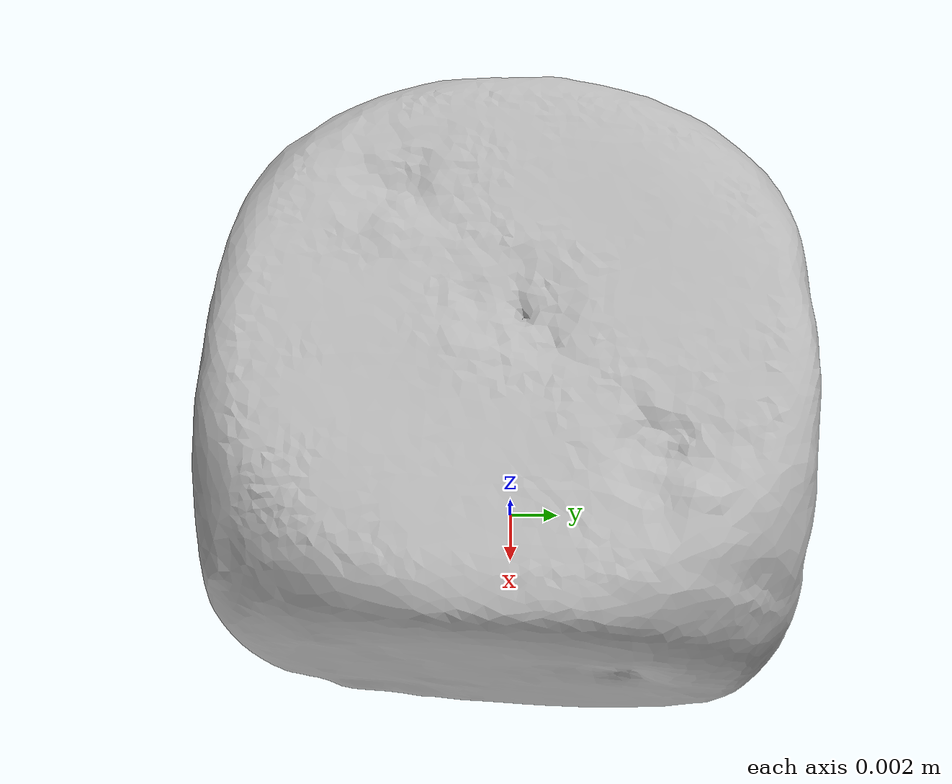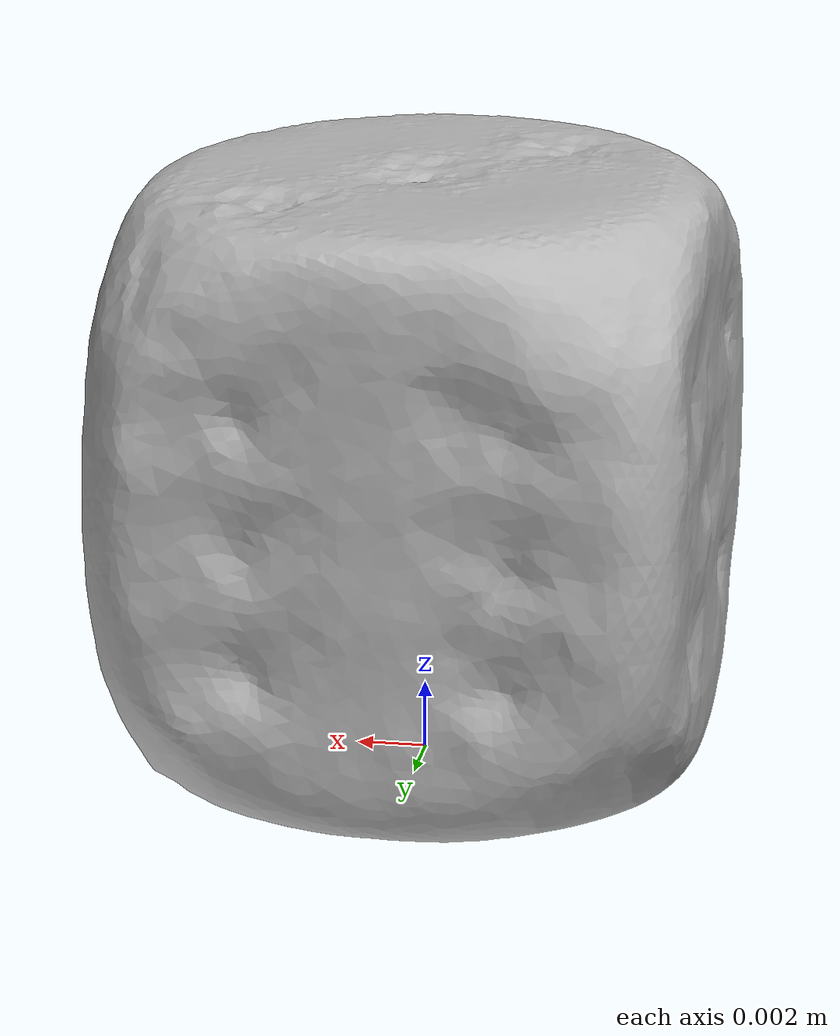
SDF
<?xml version="1.0" ?>
<sdf version='1.8'>
  <model name='ycb_062_dice'>
    <link name='body'>
      <inertial>
        <mass>0.0052</mass>
        <pose>-7.23785292e-05 1.73429757e-05 0.00868535481 0 0 0</pose>
        <inertia>
          <ixx>2.26177612783e-07</ixx>
          <ixy>3.28521893826e-10</ixy>
          <ixz>-4.05261860014e-10</ixz>
          <iyy>2.27551133803e-07</iyy>
          <iyz>2.01142240686e-10</iyz>
          <izz>2.14077947933e-07</izz>
        </inertia>
      </inertial>
      <visual name='ycb_062_dice_visual'>
        <pose>0.011135 -0.009146 0.000278 0 0 0</pose>
        <geometry>
          <mesh>
            <uri>model://ycb_062_dice/meshes/textured.dae</uri>
          </mesh>
        </geometry>
      </visual>
      <collision name='ycb_062_dice_collision'>
        <pose>0.011135 -0.009146 0.000278 0 0 0</pose>
        <geometry>
          <mesh>
            <uri>model://ycb_062_dice/meshes/nontextured.stl</uri>
          </mesh>
        </geometry>
        <max_contacts>10</max_contacts>
        <surface>
          <contact>
            <ode>
              <kp>1e15</kp>
              <kd>1e13</kd>
            </ode>
          </contact>
        </surface>
      </collision>
    </link>
  </model>
</sdf>
